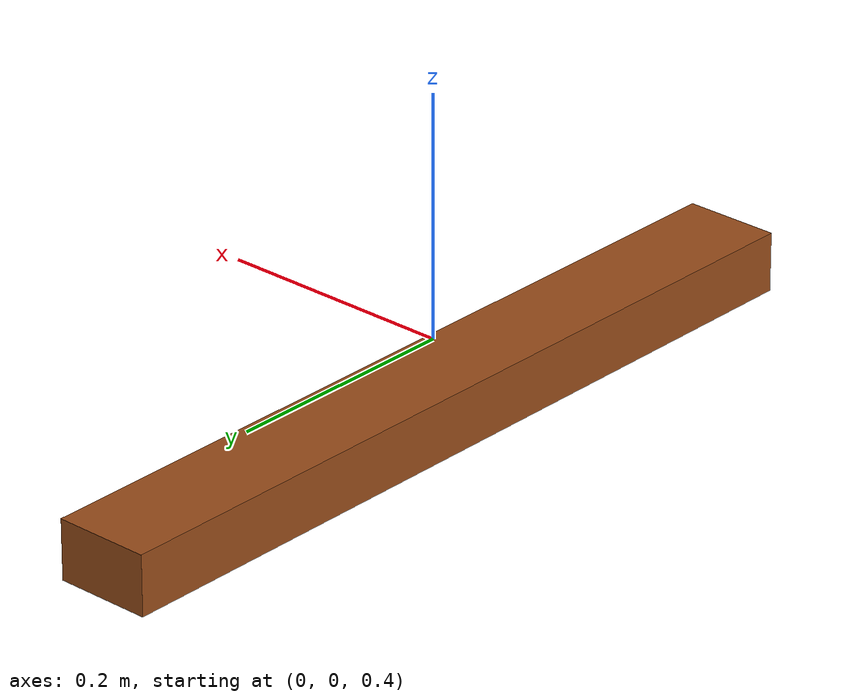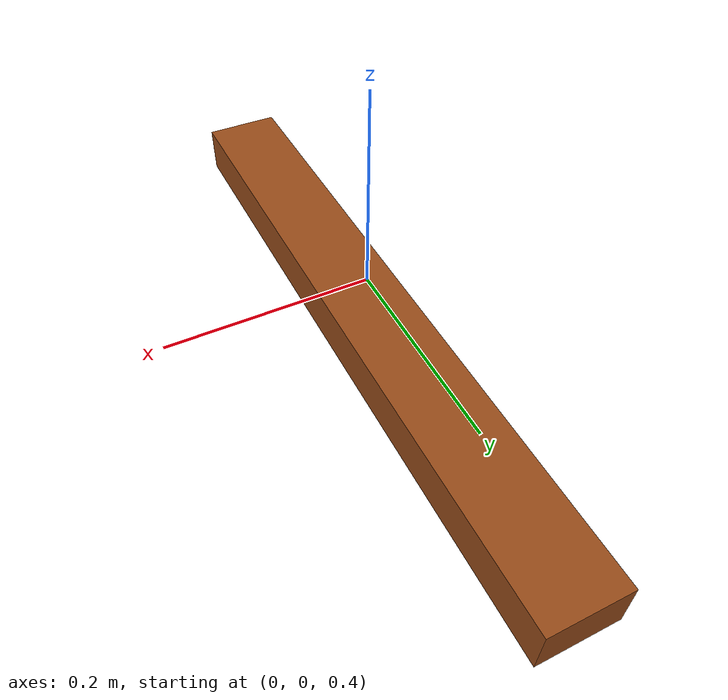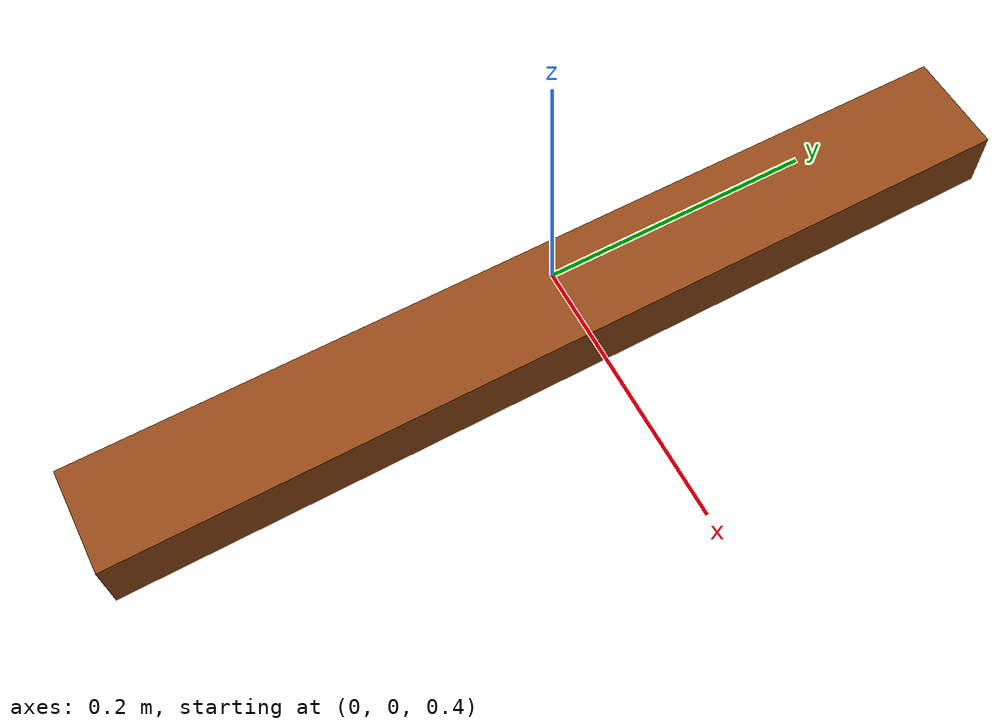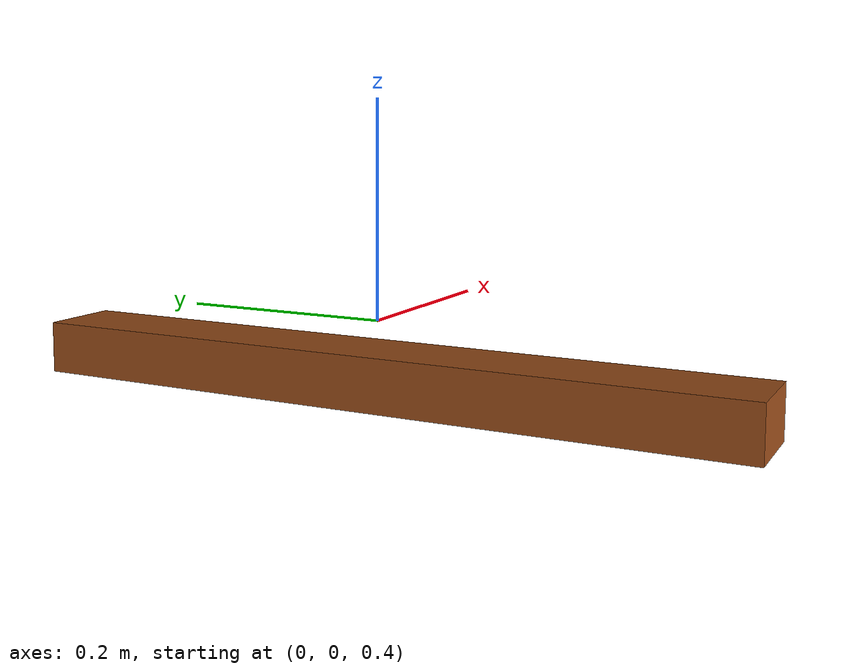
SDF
<?xml version="1.0"?>
<sdf version="1.6">
  <model name="balance_stand">
    <static>true</static>
    <link name="stand_link">
      <pose>0 0 0.35 0 0 0</pose>
      <collision name="col">
        <geometry>
          <box><size>0.08 0.70 0.05</size></box>
        </geometry>
      </collision>
      <visual name="vis">
        <geometry>
          <box><size>0.08 0.70 0.05</size></box>
        </geometry>
        <material>
          <ambient>0.6 0.3 0.1 1</ambient>
          <diffuse>0.6 0.3 0.1 1</diffuse>
        </material>
      </visual>
    </link>
  </model>
</sdf>
